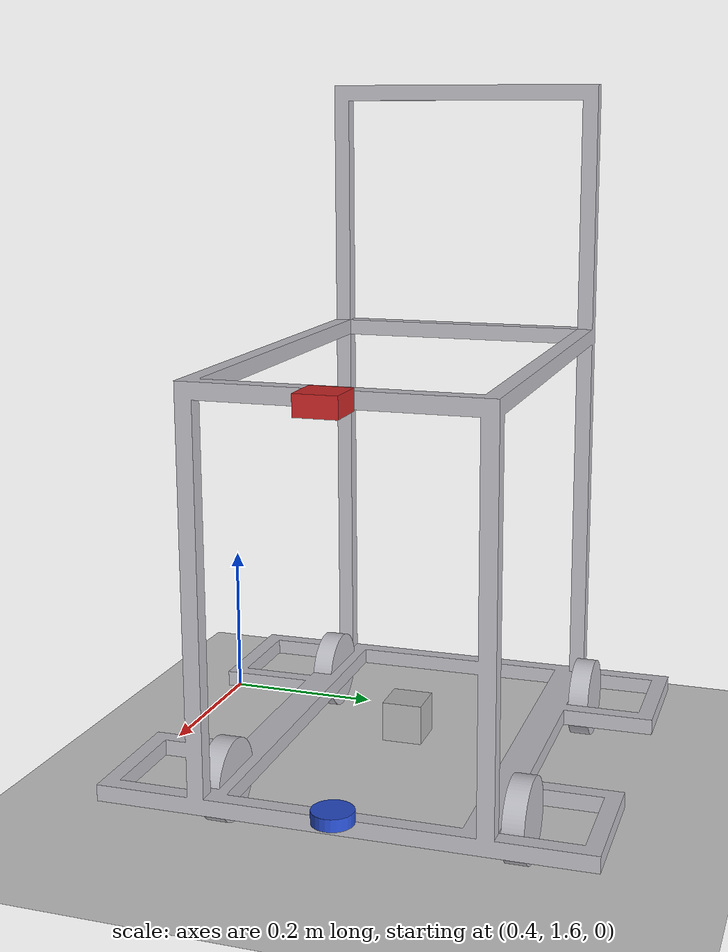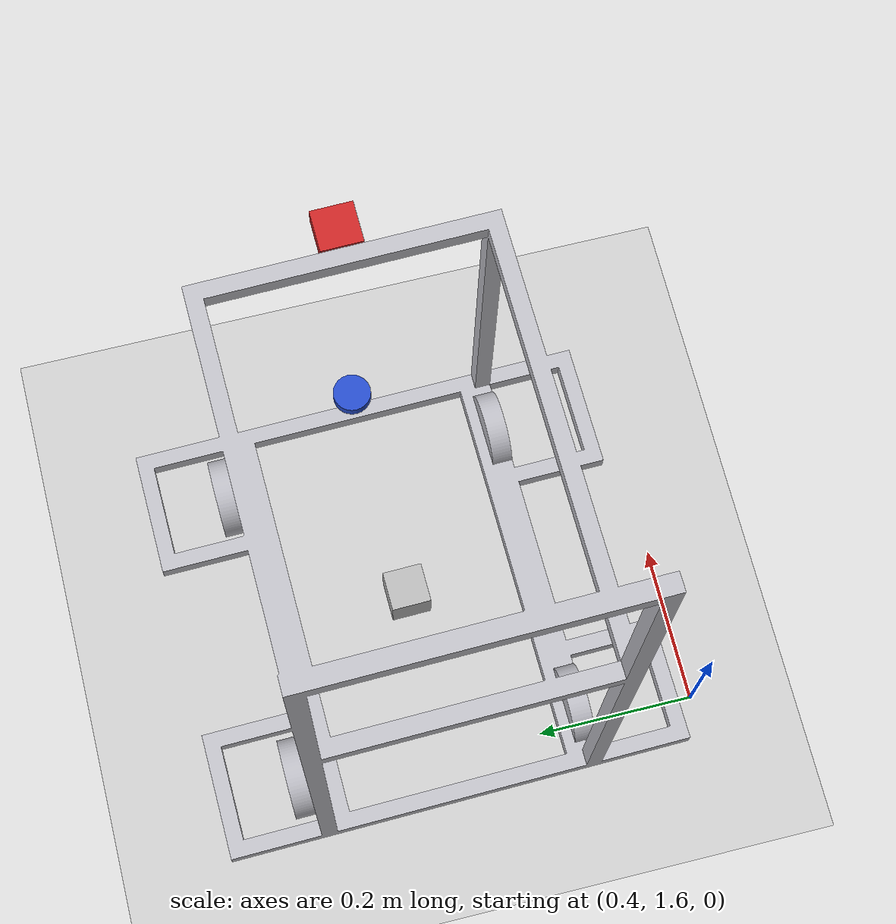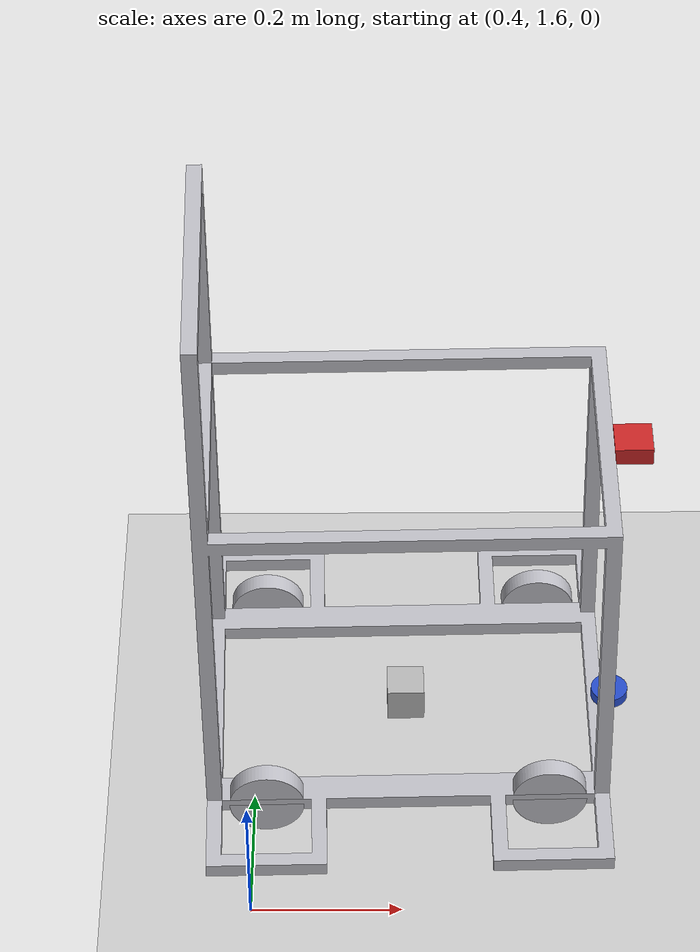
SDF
<sdf version="1.7">
 <world name="default">
  <model name="ground_plane">
   <static>1</static>
   <link name="link">
    <collision name="collision">
     <geometry><plane><normal>0 0 1</normal><size>100 100</size></plane></geometry>
     <surface>
      <contact><collide_bitmask>65535</collide_bitmask></contact>
      <friction><ode><mu>100</mu><mu2>50</mu2></ode></friction>
     </surface>
    </collision>
    <visual name="visual">
     <cast_shadows>0</cast_shadows>
     <geometry><plane><normal>0 0 1</normal><size>100 100</size></plane></geometry>
     <material>
      <script><uri>file://media/materials/scripts/gazebo.material</uri><name>Gazebo/Grey</name></script>
     </material>
    </visual>
   </link>
  </model>
  <light name="sun" type="directional">
   <pose>0 0 10 0 -0 0</pose>
   <diffuse>0.8 0.8 0.8 1</diffuse>
   <specular>0.2 0.2 0.2 1</specular>
   <attenuation>
    <range>1000</range>
    <constant>0.9</constant>
    <linear>0.01</linear>
    <quadratic>0.001</quadratic>
   </attenuation>
   <direction>-0.5 0.1 -0.9</direction>
   <spot><inner_angle>0</inner_angle><outer_angle>0</outer_angle><falloff>0</falloff></spot>
  </light>
  <scene><shadows>0</shadows><ambient>0.4 0.4 0.4 1</ambient><background>0.7 0.7 0.7 1</background></scene>
  <physics type="ode">
   <real_time_update_rate>1000</real_time_update_rate>
   <max_step_size>0.001</max_step_size>
   <real_time_factor>1</real_time_factor>
   <ode>
    <solver>
     <type>quick</type>
     <iters>150</iters>
     <precon_iters>0</precon_iters>
     <sor>1.4</sor>
     <use_dynamic_moi_rescaling>1</use_dynamic_moi_rescaling>
    </solver>
    <constraints>
     <cfm>1e-05</cfm>
     <erp>0.2</erp>
     <contact_max_correcting_vel>2000</contact_max_correcting_vel>
     <contact_surface_layer>0.01</contact_surface_layer>
    </constraints>
   </ode>
  </physics>
  <gravity>0 0 -9.8</gravity>
  <magnetic_field>6e-06 2.3e-05 -4.2e-05</magnetic_field>
  <atmosphere type="adiabatic"/>
  <spherical_coordinates>
   <surface_model>EARTH_WGS84</surface_model>
   <latitude_deg>0</latitude_deg>
   <longitude_deg>0</longitude_deg>
   <elevation>0</elevation>
   <heading_deg>0</heading_deg>
  </spherical_coordinates>
  <model name="urdf_base">
   <link name="base_footprint">
    <inertial>
     <pose>-0.008721 0 0.193851 0 -0 0</pose>
     <mass>20.0858</mass>
     <inertia>
      <ixx>1.7162</ixx>
      <ixy>1.41136e-15</ixy>
      <ixz>0.200443</ixz>
      <iyy>1.95059</iyy>
      <iyz>-4.69256e-16</iyz>
      <izz>1.52214</izz>
     </inertia>
    </inertial>
    <collision name="base_footprint_fixed_joint_lump__base_link_collision">
     <geometry>
      <mesh>
       <scale>0.001 0.001 0.001</scale>
       <uri>/home/aravs2/catkin_ws/src/server_bot/meshes/base_link.stl</uri>
      </mesh>
     </geometry>
     <surface><friction><ode><mu>0.2</mu><mu2>0.2</mu2></ode></friction></surface>
    </collision>
    <collision name="base_footprint_fixed_joint_lump__camera_collision_1">
     <pose>0.295 0 0.54 0 -0 0</pose>
     <geometry><box><size>0.05 0.05 0.025</size></box></geometry>
    </collision>
    <collision name="base_footprint_fixed_joint_lump__imu_link_collision_2">
     <pose>0 0 0.08 0 -0 0</pose>
     <geometry><box><size>0.01 0.01 0.005</size></box></geometry>
    </collision>
    <collision name="base_footprint_fixed_joint_lump__lidar_collision_3">
     <pose>0.28 0 0.075 0 0 -1.57</pose>
     <geometry><box><size>0.1 0.1 0.1</size></box></geometry>
    </collision>
    <visual name="base_footprint_fixed_joint_lump__base_link_visual">
     <geometry>
      <mesh>
       <scale>0.001 0.001 0.001</scale>
       <uri>/home/aravs2/catkin_ws/src/server_bot/meshes/base_link.stl</uri>
      </mesh>
     </geometry>
     <material>
      <script><name>Gazebo/Silver</name><uri>file://media/materials/scripts/gazebo.material</uri></script>
     </material>
    </visual>
    <visual name="base_footprint_fixed_joint_lump__camera_visual_1">
     <pose>0.295 0 0.54 0 -0 0</pose>
     <geometry><box><size>0.05 0.05 0.025</size></box></geometry>
     <material>
      <script><name>Gazebo/Red</name><uri>file://media/materials/scripts/gazebo.material</uri></script>
     </material>
    </visual>
    <visual name="base_footprint_fixed_joint_lump__imu_link_visual_2">
     <pose>0 0 0.08 0 -0 0</pose>
     <geometry><box><size>0.05 0.05 0.05</size></box></geometry>
    </visual>
    <visual name="base_footprint_fixed_joint_lump__lidar_visual_3">
     <pose>0.28 0 0.075 0 0 -1.57</pose>
     <geometry><cylinder><length>0.015</length><radius>0.025</radius></cylinder></geometry>
     <material>
      <script><name>Gazebo/Blue</name><uri>file://media/materials/scripts/gazebo.material</uri></script>
     </material>
    </visual>
    <self_collide>1</self_collide>
    <sensor name="camera1" type="camera">
     <visualize>0</visualize>
     <update_rate>30</update_rate>
     <camera name="head">
      <horizontal_fov>1.39626</horizontal_fov>
      <image><width>800</width><height>800</height><format>R8G8B8</format></image>
      <clip><near>0.02</near><far>300</far></clip>
     </camera>
     <plugin name="camera_controller" filename="libgazebo_ros_camera.so">
      <alwaysOn>1</alwaysOn>
      <updateRate>60.0</updateRate>
      <cameraName>/camera1</cameraName>
      <imageTopicName>image_raw</imageTopicName>
      <cameraInfoTopicName>info_camera</cameraInfoTopicName>
      <frameName>camera</frameName>
      <hackBaseline>0.07</hackBaseline>
      <robotNamespace>/</robotNamespace>
     </plugin>
     <pose>0.295 0 0.54 0 -0 0</pose>
    </sensor>
    <sensor name="imu_sensor" type="imu">
     <imu>
      <angular_velocity>
       <x>
        <noise type="gaussian">
         <mean>0</mean>
         <stddev>0.0002</stddev>
         <bias_mean>7.5e-06</bias_mean>
         <bias_stddev>8e-07</bias_stddev>
        </noise>
       </x>
       <y>
        <noise type="gaussian">
         <mean>0</mean>
         <stddev>0.0002</stddev>
         <bias_mean>7.5e-06</bias_mean>
         <bias_stddev>8e-07</bias_stddev>
        </noise>
       </y>
       <z>
        <noise type="gaussian">
         <mean>0</mean>
         <stddev>0.0002</stddev>
         <bias_mean>7.5e-06</bias_mean>
         <bias_stddev>8e-07</bias_stddev>
        </noise>
       </z>
      </angular_velocity>
      <linear_acceleration>
       <x>
        <noise type="gaussian">
         <mean>0</mean>
         <stddev>0.017</stddev>
         <bias_mean>0.1</bias_mean>
         <bias_stddev>0.001</bias_stddev>
        </noise>
       </x>
       <y>
        <noise type="gaussian">
         <mean>0</mean>
         <stddev>0.017</stddev>
         <bias_mean>0.1</bias_mean>
         <bias_stddev>0.001</bias_stddev>
        </noise>
       </y>
       <z>
        <noise type="gaussian">
         <mean>0</mean>
         <stddev>0.017</stddev>
         <bias_mean>0.1</bias_mean>
         <bias_stddev>0.001</bias_stddev>
        </noise>
       </z>
      </linear_acceleration>
     </imu>
     <always_on>1</always_on>
     <update_rate>100</update_rate>
     <visualize>1</visualize>
     <topic>imu</topic>
     <plugin name="imu_plugin" filename="libgazebo_ros_imu_sensor.so">
      <topicName>imu</topicName>
      <bodyName>imu_link</bodyName>
      <updateRateHZ>10.0</updateRateHZ>
      <gaussianNoise>0.0</gaussianNoise>
      <xyzOffset>0 0 0</xyzOffset>
      <rpyOffset>0 0 0</rpyOffset>
      <frameName>imu_link</frameName>
      <initial_orientation_as_reference>1</initial_orientation_as_reference>
      <robotNamespace>/</robotNamespace>
     </plugin>
     <pose>0 0 0.08 0 -0 0</pose>
    </sensor>
    <sensor name="lidar" type="ray">
     <always_on>1</always_on>
     <visualize>1</visualize>
     <update_rate>30</update_rate>
     <plugin name="scan" filename="libgazebo_ros_laser.so">
      <topicName>/lidar_topic</topicName>
      <outputType>sensor_msgs/LaserScan</outputType>
      <frameName>lidar</frameName>
      <robotNamespace>/</robotNamespace>
     </plugin>
     <ray>
      <scan>
       <horizontal>
        <samples>720</samples>
        <resolution>1</resolution>
        <min_angle>0</min_angle>
        <max_angle>6.2832</max_angle>
       </horizontal>
       <vertical><samples>1</samples><min_angle>0</min_angle><max_angle>0</max_angle></vertical>
      </scan>
      <range><min>0.58</min><max>3.5</max><resolution>0.015</resolution></range>
     </ray>
     <pose>0.28 0 0.075 0 0 -1.57</pose>
    </sensor>
   </link>
   <joint name="Revolute 13" type="revolute">
    <pose relative_to="base_footprint">0.19 0.18 0.056794 0 -0 0</pose>
    <parent>base_footprint</parent>
    <child>wheel_4_1</child>
    <axis>
     <xyz>0 1 0</xyz>
     <limit><lower>-1e+16</lower><upper>1e+16</upper></limit>
     <dynamics><spring_reference>0</spring_reference><spring_stiffness>0</spring_stiffness></dynamics>
    </axis>
   </joint>
   <link name="wheel_4_1">
    <pose relative_to="Revolute 13">0 0 0 0 -0 0</pose>
    <inertial>
     <pose>0 0.013 0 0 -0 0</pose>
     <mass>1.603</mass>
     <inertia>
      <ixx>0.001092</ixx>
      <ixy>0</ixy>
      <ixz>0</ixz>
      <iyy>0.002004</iyy>
      <iyz>0</iyz>
      <izz>0.001092</izz>
     </inertia>
    </inertial>
    <collision name="wheel_4_1_collision">
     <pose>-0.19 -0.18 -0.056794 0 -0 0</pose>
     <geometry>
      <mesh>
       <scale>0.001 0.001 0.001</scale>
       <uri>/home/aravs2/catkin_ws/src/server_bot/meshes/wheel_4_1.stl</uri>
      </mesh>
     </geometry>
     <surface><friction><ode><mu>0.2</mu><mu2>0.2</mu2></ode></friction></surface>
    </collision>
    <visual name="wheel_4_1_visual">
     <pose>-0.19 -0.18 -0.056794 0 -0 0</pose>
     <geometry>
      <mesh>
       <scale>0.001 0.001 0.001</scale>
       <uri>/home/aravs2/catkin_ws/src/server_bot/meshes/wheel_4_1.stl</uri>
      </mesh>
     </geometry>
     <material>
      <script><name>Gazebo/Silver</name><uri>file://media/materials/scripts/gazebo.material</uri></script>
     </material>
    </visual>
    <self_collide>1</self_collide>
   </link>
   <joint name="Revolute 14" type="revolute">
    <pose relative_to="base_footprint">-0.19 0.18 0.056794 0 -0 0</pose>
    <parent>base_footprint</parent>
    <child>wheel_3_1</child>
    <axis>
     <xyz>0 1 0</xyz>
     <limit><lower>-1e+16</lower><upper>1e+16</upper></limit>
     <dynamics><spring_reference>0</spring_reference><spring_stiffness>0</spring_stiffness></dynamics>
    </axis>
   </joint>
   <link name="wheel_3_1">
    <pose relative_to="Revolute 14">0 0 0 0 -0 0</pose>
    <inertial>
     <pose>0 0.013 0 0 -0 0</pose>
     <mass>1.603</mass>
     <inertia>
      <ixx>0.001092</ixx>
      <ixy>0</ixy>
      <ixz>0</ixz>
      <iyy>0.002004</iyy>
      <iyz>0</iyz>
      <izz>0.001092</izz>
     </inertia>
    </inertial>
    <collision name="wheel_3_1_collision">
     <pose>0.19 -0.18 -0.056794 0 -0 0</pose>
     <geometry>
      <mesh>
       <scale>0.001 0.001 0.001</scale>
       <uri>/home/aravs2/catkin_ws/src/server_bot/meshes/wheel_3_1.stl</uri>
      </mesh>
     </geometry>
     <surface><friction><ode><mu>0.2</mu><mu2>0.2</mu2></ode></friction></surface>
    </collision>
    <visual name="wheel_3_1_visual">
     <pose>0.19 -0.18 -0.056794 0 -0 0</pose>
     <geometry>
      <mesh>
       <scale>0.001 0.001 0.001</scale>
       <uri>/home/aravs2/catkin_ws/src/server_bot/meshes/wheel_3_1.stl</uri>
      </mesh>
     </geometry>
     <material>
      <script><name>Gazebo/Silver</name><uri>file://media/materials/scripts/gazebo.material</uri></script>
     </material>
    </visual>
    <self_collide>1</self_collide>
   </link>
   <joint name="Revolute 15" type="revolute">
    <pose relative_to="base_footprint">-0.19 -0.18 0.056794 3.14 -0 0</pose>
    <parent>base_footprint</parent>
    <child>wheel_1_1</child>
    <axis>
     <xyz>0 -1 0</xyz>
     <limit><lower>-1e+16</lower><upper>1e+16</upper></limit>
     <dynamics><spring_reference>0</spring_reference><spring_stiffness>0</spring_stiffness></dynamics>
    </axis>
   </joint>
   <link name="wheel_1_1">
    <pose relative_to="Revolute 15">0 0 0 0 -0 0</pose>
    <inertial>
     <pose>-0 -0.013 0 0 -0 0</pose>
     <mass>1.603</mass>
     <inertia>
      <ixx>0.001092</ixx>
      <ixy>0</ixy>
      <ixz>0</ixz>
      <iyy>0.002004</iyy>
      <iyz>0</iyz>
      <izz>0.001092</izz>
     </inertia>
    </inertial>
    <collision name="wheel_1_1_collision">
     <pose>0.19 0.18 -0.056794 0 -0 0</pose>
     <geometry>
      <mesh>
       <scale>0.001 0.001 0.001</scale>
       <uri>/home/aravs2/catkin_ws/src/server_bot/meshes/wheel_1_1.stl</uri>
      </mesh>
     </geometry>
     <surface><friction><ode><mu>0.2</mu><mu2>0.2</mu2></ode></friction></surface>
    </collision>
    <visual name="wheel_1_1_visual">
     <pose>0.19 0.18 -0.056794 0 -0 0</pose>
     <geometry>
      <mesh>
       <scale>0.001 0.001 0.001</scale>
       <uri>/home/aravs2/catkin_ws/src/server_bot/meshes/wheel_1_1.stl</uri>
      </mesh>
     </geometry>
     <material>
      <script><name>Gazebo/Silver</name><uri>file://media/materials/scripts/gazebo.material</uri></script>
     </material>
    </visual>
    <self_collide>1</self_collide>
   </link>
   <joint name="Revolute 16" type="revolute">
    <pose relative_to="base_footprint">0.19 -0.18 0.056794 3.14 -0 0</pose>
    <parent>base_footprint</parent>
    <child>wheel_2_1</child>
    <axis>
     <xyz>0 -1 0</xyz>
     <limit><lower>-1e+16</lower><upper>1e+16</upper></limit>
     <dynamics><spring_reference>0</spring_reference><spring_stiffness>0</spring_stiffness></dynamics>
    </axis>
   </joint>
   <link name="wheel_2_1">
    <pose relative_to="Revolute 16">0 0 0 0 -0 0</pose>
    <inertial>
     <pose>-0 -0.013 0 0 -0 0</pose>
     <mass>1.603</mass>
     <inertia>
      <ixx>0.001092</ixx>
      <ixy>0</ixy>
      <ixz>0</ixz>
      <iyy>0.002004</iyy>
      <iyz>0</iyz>
      <izz>0.001092</izz>
     </inertia>
    </inertial>
    <collision name="wheel_2_1_collision">
     <pose>-0.19 0.18 -0.056794 0 -0 0</pose>
     <geometry>
      <mesh>
       <scale>0.001 0.001 0.001</scale>
       <uri>/home/aravs2/catkin_ws/src/server_bot/meshes/wheel_2_1.stl</uri>
      </mesh>
     </geometry>
     <surface><friction><ode><mu>0.2</mu><mu2>0.2</mu2></ode></friction></surface>
    </collision>
    <visual name="wheel_2_1_visual">
     <pose>-0.19 0.18 -0.056794 0 -0 0</pose>
     <geometry>
      <mesh>
       <scale>0.001 0.001 0.001</scale>
       <uri>/home/aravs2/catkin_ws/src/server_bot/meshes/wheel_2_1.stl</uri>
      </mesh>
     </geometry>
     <material>
      <script><name>Gazebo/Silver</name><uri>file://media/materials/scripts/gazebo.material</uri></script>
     </material>
    </visual>
    <self_collide>1</self_collide>
   </link>
   <plugin name="control" filename="libgazebo_ros_control.so"><robotNamespace>/</robotNamespace></plugin>
   <static>0</static>
   <plugin name="skid_steer_drive_controller" filename="libgazebo_ros_skid_steer_drive.so">
    <updateRate>15.0</updateRate>
    <robotNamespace>/</robotNamespace>
    <rightFrontJoint>Revolute 16</rightFrontJoint>
    <leftFrontJoint>Revolute 13</leftFrontJoint>
    <rightRearJoint>Revolute 15</rightRearJoint>
    <leftRearJoint>Revolute 14</leftRearJoint>
    <wheelSeparation>0.4</wheelSeparation>
    <wheelDiameter>0.215</wheelDiameter>
    <robotBaseFrame>base_footprint</robotBaseFrame>
    <torque>40</torque>
    <topicName>cmd_vel</topicName>
    <broadcastTF>1</broadcastTF>
    <publishOdomTF>1</publishOdomTF>
    <publishOdom>1</publishOdom>
   </plugin>
   <pose>0.605108 1.92581 -0.006795 -0.000229 -2.5e-05 0.01937</pose>
  </model>
 </world>
</sdf>
